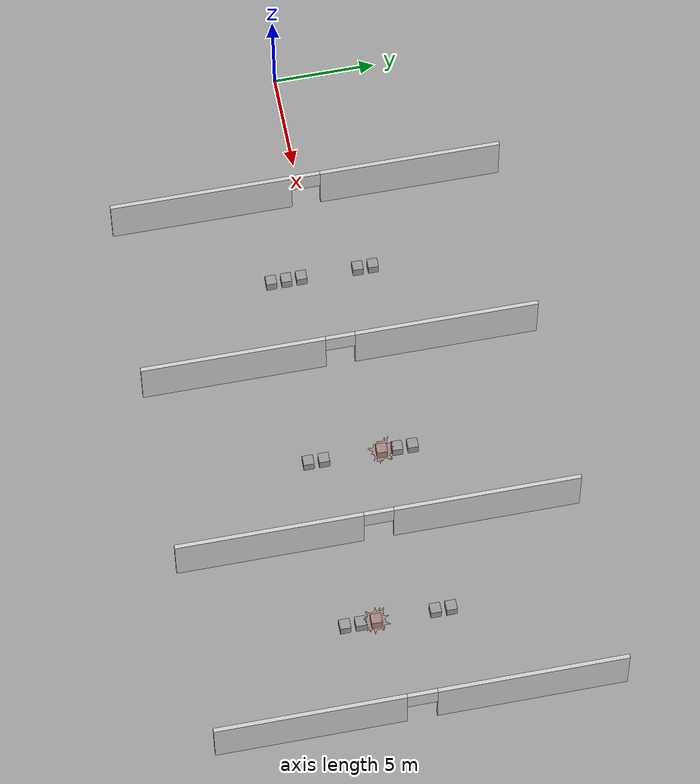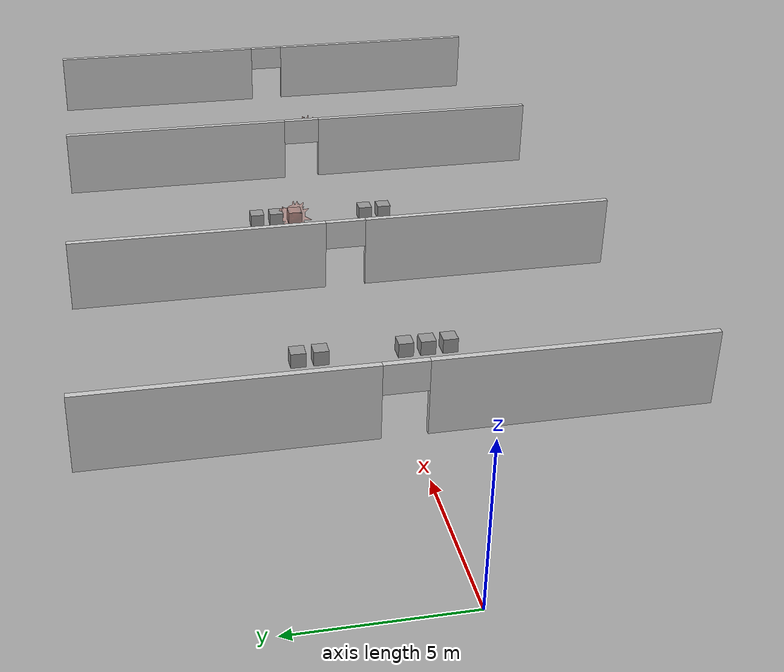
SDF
<sdf version="1.6">
 <world name="default">
  <model name="trap_cont_4_n">
   <static>0</static>
   <static>0</static>
   <link name="normal_cue_1::vis_cue_normal">
    <inertial>
     <mass>1</mass>
     <inertia>
      <ixx>0.166667</ixx>
      <ixy>0</ixy>
      <ixz>0</ixz>
      <iyy>0.166667</iyy>
      <iyz>0</iyz>
      <izz>0.166667</izz>
     </inertia>
    </inertial>
    <collision name="collision"><geometry><box><size>0.5 0.5 0.5</size></box></geometry></collision>
    <visual name="box_visual">
     <geometry><box><size>0.5 0.5 0.5</size></box></geometry>
     <material>
      <script><name>Gazebo/Grey</name><uri>file://media/materials/scripts/gazebo.material</uri></script>
     </material>
    </visual>
    <pose>0 -2.48 0.25 0 -0 0</pose>
   </link>
   <static>0</static>
   <link name="normal_cue_2::vis_cue_normal">
    <inertial>
     <mass>1</mass>
     <inertia>
      <ixx>0.166667</ixx>
      <ixy>0</ixy>
      <ixz>0</ixz>
      <iyy>0.166667</iyy>
      <iyz>0</iyz>
      <izz>0.166667</izz>
     </inertia>
    </inertial>
    <collision name="collision"><geometry><box><size>0.5 0.5 0.5</size></box></geometry></collision>
    <visual name="box_visual">
     <geometry><box><size>0.5 0.5 0.5</size></box></geometry>
     <material>
      <script><name>Gazebo/Grey</name><uri>file://media/materials/scripts/gazebo.material</uri></script>
     </material>
    </visual>
    <pose>0 -1.745 0.25 0 -0 0</pose>
   </link>
   <static>0</static>
   <link name="normal_cue_3::vis_cue_normal">
    <inertial>
     <mass>1</mass>
     <inertia>
      <ixx>0.166667</ixx>
      <ixy>0</ixy>
      <ixz>0</ixz>
      <iyy>0.166667</iyy>
      <iyz>0</iyz>
      <izz>0.166667</izz>
     </inertia>
    </inertial>
    <collision name="collision"><geometry><box><size>0.5 0.5 0.5</size></box></geometry></collision>
    <visual name="box_visual">
     <geometry><box><size>0.5 0.5 0.5</size></box></geometry>
     <material>
      <script><name>Gazebo/Grey</name><uri>file://media/materials/scripts/gazebo.material</uri></script>
     </material>
    </visual>
    <pose>0 -1.01 0.25 0 -0 0</pose>
   </link>
   <static>0</static>
   <link name="normal_cue_4::vis_cue_normal">
    <inertial>
     <mass>1</mass>
     <inertia>
      <ixx>0.166667</ixx>
      <ixy>0</ixy>
      <ixz>0</ixz>
      <iyy>0.166667</iyy>
      <iyz>0</iyz>
      <izz>0.166667</izz>
     </inertia>
    </inertial>
    <collision name="collision"><geometry><box><size>0.5 0.5 0.5</size></box></geometry></collision>
    <visual name="box_visual">
     <geometry><box><size>0.5 0.5 0.5</size></box></geometry>
     <material>
      <script><name>Gazebo/Grey</name><uri>file://media/materials/scripts/gazebo.material</uri></script>
     </material>
    </visual>
    <pose>0 1.74 0.25 0 -0 0</pose>
   </link>
   <static>0</static>
   <link name="normal_cue_5::vis_cue_normal">
    <inertial>
     <mass>1</mass>
     <inertia>
      <ixx>0.166667</ixx>
      <ixy>0</ixy>
      <ixz>0</ixz>
      <iyy>0.166667</iyy>
      <iyz>0</iyz>
      <izz>0.166667</izz>
     </inertia>
    </inertial>
    <collision name="collision"><geometry><box><size>0.5 0.5 0.5</size></box></geometry></collision>
    <visual name="box_visual">
     <geometry><box><size>0.5 0.5 0.5</size></box></geometry>
     <material>
      <script><name>Gazebo/Grey</name><uri>file://media/materials/scripts/gazebo.material</uri></script>
     </material>
    </visual>
    <pose>0 2.48 0.25 0 -0 0</pose>
   </link>
   <pose>11.4717 0.179902 1.2e-05 7e-06 -7e-06 0</pose>
  </model>
  <model name="trap_cont_4_r_2">
   <static>0</static>
   <static>0</static>
   <link name="normal_cue_1::vis_cue_normal">
    <inertial>
     <mass>1</mass>
     <inertia>
      <ixx>0.166667</ixx>
      <ixy>0</ixy>
      <ixz>0</ixz>
      <iyy>0.166667</iyy>
      <iyz>0</iyz>
      <izz>0.166667</izz>
     </inertia>
    </inertial>
    <collision name="collision"><geometry><box><size>0.5 0.5 0.5</size></box></geometry></collision>
    <visual name="box_visual">
     <geometry><box><size>0.5 0.5 0.5</size></box></geometry>
     <material>
      <script><name>Gazebo/Grey</name><uri>file://media/materials/scripts/gazebo.material</uri></script>
     </material>
    </visual>
    <pose>0 -2.48 0.25 0 -0 0</pose>
   </link>
   <static>0</static>
   <link name="normal_cue_2::vis_cue_normal">
    <inertial>
     <mass>1</mass>
     <inertia>
      <ixx>0.166667</ixx>
      <ixy>0</ixy>
      <ixz>0</ixz>
      <iyy>0.166667</iyy>
      <iyz>0</iyz>
      <izz>0.166667</izz>
     </inertia>
    </inertial>
    <collision name="collision"><geometry><box><size>0.5 0.5 0.5</size></box></geometry></collision>
    <visual name="box_visual">
     <geometry><box><size>0.5 0.5 0.5</size></box></geometry>
     <material>
      <script><name>Gazebo/Grey</name><uri>file://media/materials/scripts/gazebo.material</uri></script>
     </material>
    </visual>
    <pose>0 -1.745 0.25 0 -0 0</pose>
   </link>
   <static>0</static>
   <link name="repelling_cue_0::vis_cue_repel">
    <inertial>
     <mass>1</mass>
     <inertia>
      <ixx>0.166667</ixx>
      <ixy>0</ixy>
      <ixz>0</ixz>
      <iyy>0.166667</iyy>
      <iyz>0</iyz>
      <izz>0.166667</izz>
     </inertia>
    </inertial>
    <collision name="collision"><geometry><box><size>0.5 0.5 0.5</size></box></geometry></collision>
    <visual name="box_visual">
     <geometry><box><size>0.5 0.5 0.5</size></box></geometry>
     <material>
      <script><name>Gazebo/Grey</name><uri>file://media/materials/scripts/gazebo.material</uri></script>
     </material>
    </visual>
    <visual name="cue_visual">
     <geometry><mesh><uri>model://repelling_cue_2.dae</uri><scale>0.85 0.85 0.85</scale></mesh></geometry>
     <material>
      <ambient>1 0.3 0.2 0.2</ambient>
      <diffuse>1 0.3 0.2 0.2</diffuse>
      <specular>1 0.3 0.2 0.5</specular>
      <emissive>0.5 0 0 0.1</emissive>
     </material>
    </visual>
    <pose>0 -1.01 0.25 0 -0 0</pose>
   </link>
   <static>0</static>
   <link name="normal_cue_3::vis_cue_normal">
    <inertial>
     <mass>1</mass>
     <inertia>
      <ixx>0.166667</ixx>
      <ixy>0</ixy>
      <ixz>0</ixz>
      <iyy>0.166667</iyy>
      <iyz>0</iyz>
      <izz>0.166667</izz>
     </inertia>
    </inertial>
    <collision name="collision"><geometry><box><size>0.5 0.5 0.5</size></box></geometry></collision>
    <visual name="box_visual">
     <geometry><box><size>0.5 0.5 0.5</size></box></geometry>
     <material>
      <script><name>Gazebo/Grey</name><uri>file://media/materials/scripts/gazebo.material</uri></script>
     </material>
    </visual>
    <pose>0 1.74 0.25 0 -0 0</pose>
   </link>
   <static>0</static>
   <link name="normal_cue_4::vis_cue_normal">
    <inertial>
     <mass>1</mass>
     <inertia>
      <ixx>0.166667</ixx>
      <ixy>0</ixy>
      <ixz>0</ixz>
      <iyy>0.166667</iyy>
      <iyz>0</iyz>
      <izz>0.166667</izz>
     </inertia>
    </inertial>
    <collision name="collision"><geometry><box><size>0.5 0.5 0.5</size></box></geometry></collision>
    <visual name="box_visual">
     <geometry><box><size>0.5 0.5 0.5</size></box></geometry>
     <material>
      <script><name>Gazebo/Grey</name><uri>file://media/materials/scripts/gazebo.material</uri></script>
     </material>
    </visual>
    <pose>0 2.48 0.25 0 -0 0</pose>
   </link>
   <pose>21.435 0.108354 1.2e-05 6e-06 -6e-06 3.1328</pose>
  </model>
  <model name="trap_cont_4_r_2_0">
   <static>0</static>
   <static>0</static>
   <link name="normal_cue_1::vis_cue_normal">
    <inertial>
     <mass>1</mass>
     <inertia>
      <ixx>0.166667</ixx>
      <ixy>0</ixy>
      <ixz>0</ixz>
      <iyy>0.166667</iyy>
      <iyz>0</iyz>
      <izz>0.166667</izz>
     </inertia>
    </inertial>
    <collision name="collision"><geometry><box><size>0.5 0.5 0.5</size></box></geometry></collision>
    <visual name="box_visual">
     <geometry><box><size>0.5 0.5 0.5</size></box></geometry>
     <material>
      <script><name>Gazebo/Grey</name><uri>file://media/materials/scripts/gazebo.material</uri></script>
     </material>
    </visual>
    <pose>0 -2.48 0.25 0 -0 0</pose>
   </link>
   <static>0</static>
   <link name="normal_cue_2::vis_cue_normal">
    <inertial>
     <mass>1</mass>
     <inertia>
      <ixx>0.166667</ixx>
      <ixy>0</ixy>
      <ixz>0</ixz>
      <iyy>0.166667</iyy>
      <iyz>0</iyz>
      <izz>0.166667</izz>
     </inertia>
    </inertial>
    <collision name="collision"><geometry><box><size>0.5 0.5 0.5</size></box></geometry></collision>
    <visual name="box_visual">
     <geometry><box><size>0.5 0.5 0.5</size></box></geometry>
     <material>
      <script><name>Gazebo/Grey</name><uri>file://media/materials/scripts/gazebo.material</uri></script>
     </material>
    </visual>
    <pose>0 -1.745 0.25 0 -0 0</pose>
   </link>
   <static>0</static>
   <link name="repelling_cue_0::vis_cue_repel">
    <inertial>
     <mass>1</mass>
     <inertia>
      <ixx>0.166667</ixx>
      <ixy>0</ixy>
      <ixz>0</ixz>
      <iyy>0.166667</iyy>
      <iyz>0</iyz>
      <izz>0.166667</izz>
     </inertia>
    </inertial>
    <collision name="collision"><geometry><box><size>0.5 0.5 0.5</size></box></geometry></collision>
    <visual name="box_visual">
     <geometry><box><size>0.5 0.5 0.5</size></box></geometry>
     <material>
      <script><name>Gazebo/Grey</name><uri>file://media/materials/scripts/gazebo.material</uri></script>
     </material>
    </visual>
    <visual name="cue_visual">
     <geometry><mesh><uri>model://repelling_cue_2.dae</uri><scale>0.85 0.85 0.85</scale></mesh></geometry>
     <material>
      <ambient>1 0.3 0.2 0.2</ambient>
      <diffuse>1 0.3 0.2 0.2</diffuse>
      <specular>1 0.3 0.2 0.5</specular>
      <emissive>0.5 0 0 0.1</emissive>
     </material>
    </visual>
    <pose>0 -1.01 0.25 0 -0 0</pose>
   </link>
   <static>0</static>
   <link name="normal_cue_3::vis_cue_normal">
    <inertial>
     <mass>1</mass>
     <inertia>
      <ixx>0.166667</ixx>
      <ixy>0</ixy>
      <ixz>0</ixz>
      <iyy>0.166667</iyy>
      <iyz>0</iyz>
      <izz>0.166667</izz>
     </inertia>
    </inertial>
    <collision name="collision"><geometry><box><size>0.5 0.5 0.5</size></box></geometry></collision>
    <visual name="box_visual">
     <geometry><box><size>0.5 0.5 0.5</size></box></geometry>
     <material>
      <script><name>Gazebo/Grey</name><uri>file://media/materials/scripts/gazebo.material</uri></script>
     </material>
    </visual>
    <pose>0 1.74 0.25 0 -0 0</pose>
   </link>
   <static>0</static>
   <link name="normal_cue_4::vis_cue_normal">
    <inertial>
     <mass>1</mass>
     <inertia>
      <ixx>0.166667</ixx>
      <ixy>0</ixy>
      <ixz>0</ixz>
      <iyy>0.166667</iyy>
      <iyz>0</iyz>
      <izz>0.166667</izz>
     </inertia>
    </inertial>
    <collision name="collision"><geometry><box><size>0.5 0.5 0.5</size></box></geometry></collision>
    <visual name="box_visual">
     <geometry><box><size>0.5 0.5 0.5</size></box></geometry>
     <material>
      <script><name>Gazebo/Grey</name><uri>file://media/materials/scripts/gazebo.material</uri></script>
     </material>
    </visual>
    <pose>0 2.48 0.25 0 -0 0</pose>
   </link>
   <pose>30.0609 0.167992 1.2e-05 7e-06 -7e-06 0</pose>
  </model>
  <model name="study_track_gate_block">
   <static>1</static>
   <link name="gate_l">
    <pose>0 -5.1 1.25 0 -0 0</pose>
    <collision name="collision"><geometry><box><size>0.2 8.8 2.5</size></box></geometry></collision>
    <visual name="visual">
     <geometry><box><size>0.2 8.8 2.5</size></box></geometry>
     <material>
      <ambient>0.7 0.7 0.7 1</ambient>
      <diffuse>0.8 0.8 0.8 1</diffuse>
      <specular>0.1 0.1 0.1 1</specular>
      <emissive>0 0 0 0</emissive>
     </material>
    </visual>
   </link>
   <link name="gate_r">
    <pose>0 5.1 1.25 0 -0 0</pose>
    <collision name="collision"><geometry><box><size>0.2 8.8 2.5</size></box></geometry></collision>
    <visual name="visual">
     <geometry><box><size>0.2 8.8 2.5</size></box></geometry>
     <material>
      <ambient>0.7 0.7 0.7 1</ambient>
      <diffuse>0.8 0.8 0.8 1</diffuse>
      <specular>0.1 0.1 0.1 1</specular>
      <emissive>0 0 0 0</emissive>
     </material>
    </visual>
   </link>
   <link name="gate_m">
    <pose>0 0 2 0 -0 0</pose>
    <collision name="collision"><geometry><box><size>0.2 1.4 1</size></box></geometry></collision>
    <visual name="visual">
     <geometry><box><size>0.2 1.4 1</size></box></geometry>
     <material>
      <ambient>0.7 0.7 0.7 1</ambient>
      <diffuse>0.8 0.8 0.8 1</diffuse>
      <specular>0.1 0.1 0.1 1</specular>
      <emissive>0 0 0 0</emissive>
     </material>
    </visual>
   </link>
   <pose>16.2649 0.158835 0 0 -0 0</pose>
  </model>
  <model name="study_track_gate_block_0">
   <static>1</static>
   <link name="gate_l">
    <pose>0 -5.1 1.25 0 -0 0</pose>
    <collision name="collision"><geometry><box><size>0.2 8.8 2.5</size></box></geometry></collision>
    <visual name="visual">
     <geometry><box><size>0.2 8.8 2.5</size></box></geometry>
     <material>
      <ambient>0.7 0.7 0.7 1</ambient>
      <diffuse>0.8 0.8 0.8 1</diffuse>
      <specular>0.1 0.1 0.1 1</specular>
      <emissive>0 0 0 0</emissive>
     </material>
    </visual>
   </link>
   <link name="gate_r">
    <pose>0 5.1 1.25 0 -0 0</pose>
    <collision name="collision"><geometry><box><size>0.2 8.8 2.5</size></box></geometry></collision>
    <visual name="visual">
     <geometry><box><size>0.2 8.8 2.5</size></box></geometry>
     <material>
      <ambient>0.7 0.7 0.7 1</ambient>
      <diffuse>0.8 0.8 0.8 1</diffuse>
      <specular>0.1 0.1 0.1 1</specular>
      <emissive>0 0 0 0</emissive>
     </material>
    </visual>
   </link>
   <link name="gate_m">
    <pose>0 0 2 0 -0 0</pose>
    <collision name="collision"><geometry><box><size>0.2 1.4 1</size></box></geometry></collision>
    <visual name="visual">
     <geometry><box><size>0.2 1.4 1</size></box></geometry>
     <material>
      <ambient>0.7 0.7 0.7 1</ambient>
      <diffuse>0.8 0.8 0.8 1</diffuse>
      <specular>0.1 0.1 0.1 1</specular>
      <emissive>0 0 0 0</emissive>
     </material>
    </visual>
   </link>
   <pose>25.7088 0.129223 0 0 -0 0</pose>
  </model>
  <model name="study_track_gate_block_1">
   <static>1</static>
   <link name="gate_l">
    <pose>0 -5.1 1.25 0 -0 0</pose>
    <collision name="collision"><geometry><box><size>0.2 8.8 2.5</size></box></geometry></collision>
    <visual name="visual">
     <geometry><box><size>0.2 8.8 2.5</size></box></geometry>
     <material>
      <ambient>0.7 0.7 0.7 1</ambient>
      <diffuse>0.8 0.8 0.8 1</diffuse>
      <specular>0.1 0.1 0.1 1</specular>
      <emissive>0 0 0 0</emissive>
     </material>
    </visual>
   </link>
   <link name="gate_r">
    <pose>0 5.1 1.25 0 -0 0</pose>
    <collision name="collision"><geometry><box><size>0.2 8.8 2.5</size></box></geometry></collision>
    <visual name="visual">
     <geometry><box><size>0.2 8.8 2.5</size></box></geometry>
     <material>
      <ambient>0.7 0.7 0.7 1</ambient>
      <diffuse>0.8 0.8 0.8 1</diffuse>
      <specular>0.1 0.1 0.1 1</specular>
      <emissive>0 0 0 0</emissive>
     </material>
    </visual>
   </link>
   <link name="gate_m">
    <pose>0 0 2 0 -0 0</pose>
    <collision name="collision"><geometry><box><size>0.2 1.4 1</size></box></geometry></collision>
    <visual name="visual">
     <geometry><box><size>0.2 1.4 1</size></box></geometry>
     <material>
      <ambient>0.7 0.7 0.7 1</ambient>
      <diffuse>0.8 0.8 0.8 1</diffuse>
      <specular>0.1 0.1 0.1 1</specular>
      <emissive>0 0 0 0</emissive>
     </material>
    </visual>
   </link>
   <pose>35.044 0.272989 0 0 -0 0</pose>
  </model>
  <model name="study_track_gate_block_5">
   <static>1</static>
   <link name="gate_l">
    <pose>0 -5.1 1.25 0 -0 0</pose>
    <collision name="collision"><geometry><box><size>0.2 8.8 2.5</size></box></geometry></collision>
    <visual name="visual">
     <geometry><box><size>0.2 8.8 2.5</size></box></geometry>
     <material>
      <ambient>0.7 0.7 0.7 1</ambient>
      <diffuse>0.8 0.8 0.8 1</diffuse>
      <specular>0.1 0.1 0.1 1</specular>
      <emissive>0 0 0 0</emissive>
     </material>
    </visual>
   </link>
   <link name="gate_r">
    <pose>0 5.1 1.25 0 -0 0</pose>
    <collision name="collision"><geometry><box><size>0.2 8.8 2.5</size></box></geometry></collision>
    <visual name="visual">
     <geometry><box><size>0.2 8.8 2.5</size></box></geometry>
     <material>
      <ambient>0.7 0.7 0.7 1</ambient>
      <diffuse>0.8 0.8 0.8 1</diffuse>
      <specular>0.1 0.1 0.1 1</specular>
      <emissive>0 0 0 0</emissive>
     </material>
    </visual>
   </link>
   <link name="gate_m">
    <pose>0 0 2 0 -0 0</pose>
    <collision name="collision"><geometry><box><size>0.2 1.4 1</size></box></geometry></collision>
    <visual name="visual">
     <geometry><box><size>0.2 1.4 1</size></box></geometry>
     <material>
      <ambient>0.7 0.7 0.7 1</ambient>
      <diffuse>0.8 0.8 0.8 1</diffuse>
      <specular>0.1 0.1 0.1 1</specular>
      <emissive>0 0 0 0</emissive>
     </material>
    </visual>
   </link>
   <pose>7.21212 0.215757 0 0 -0 0</pose>
  </model>
 </world>
</sdf>
